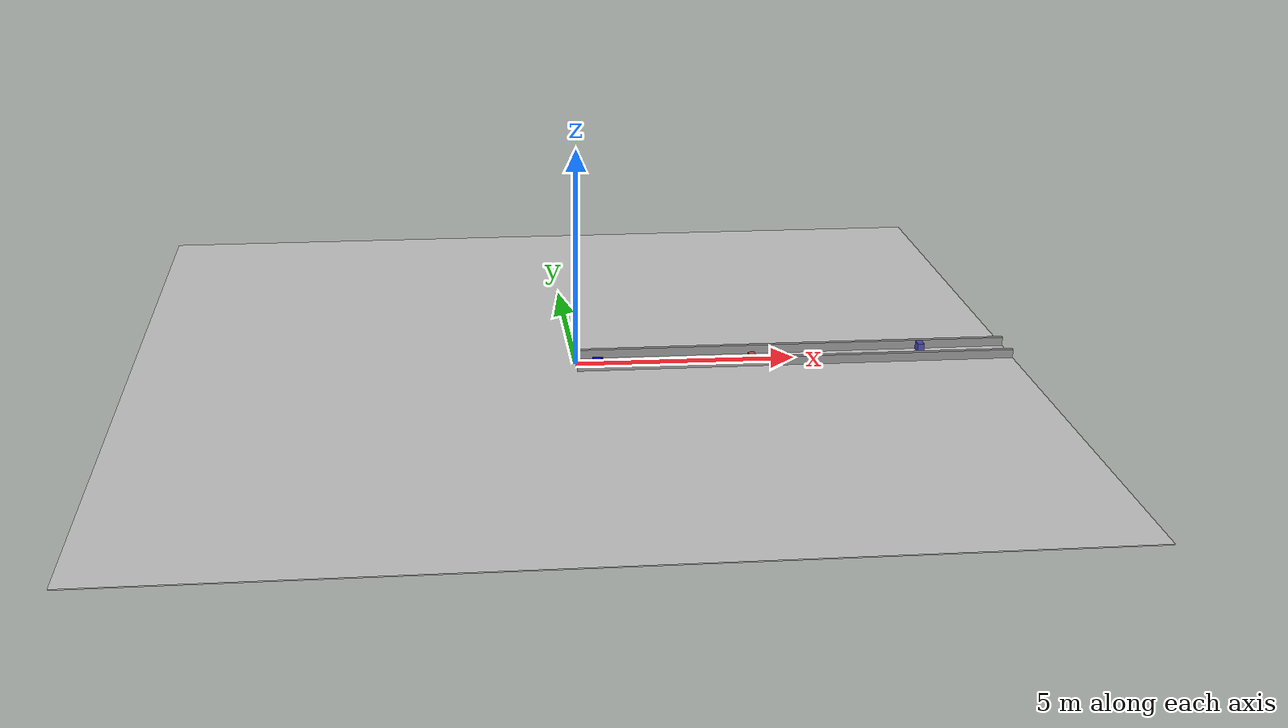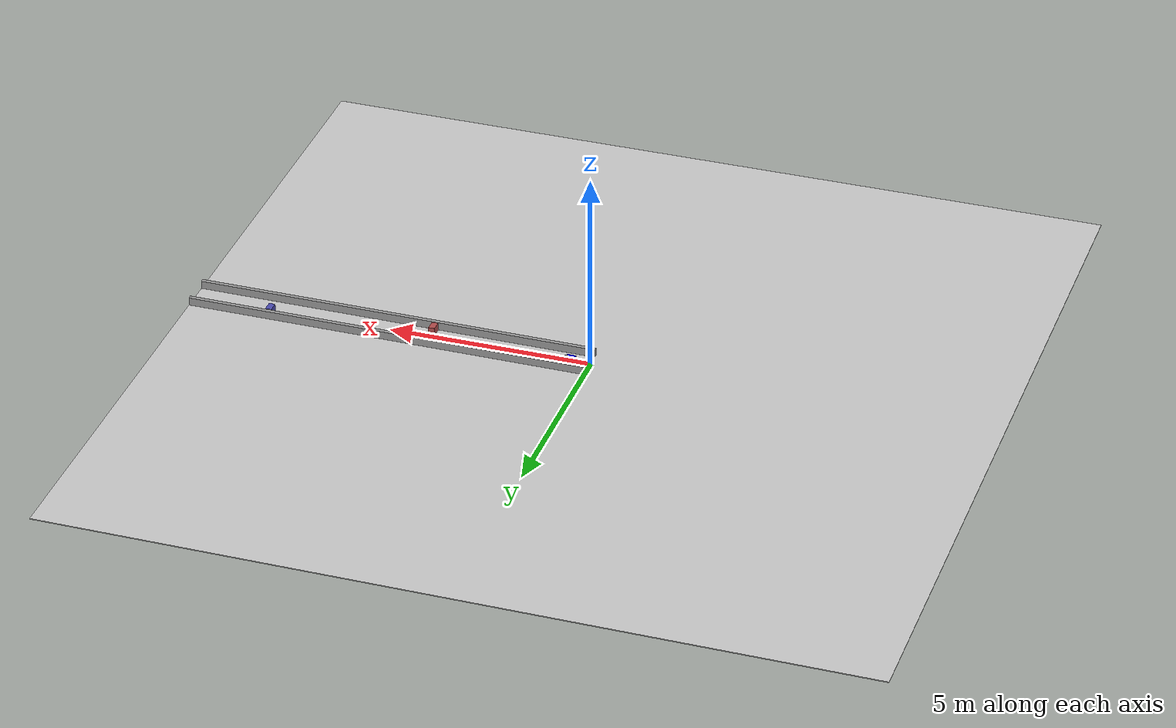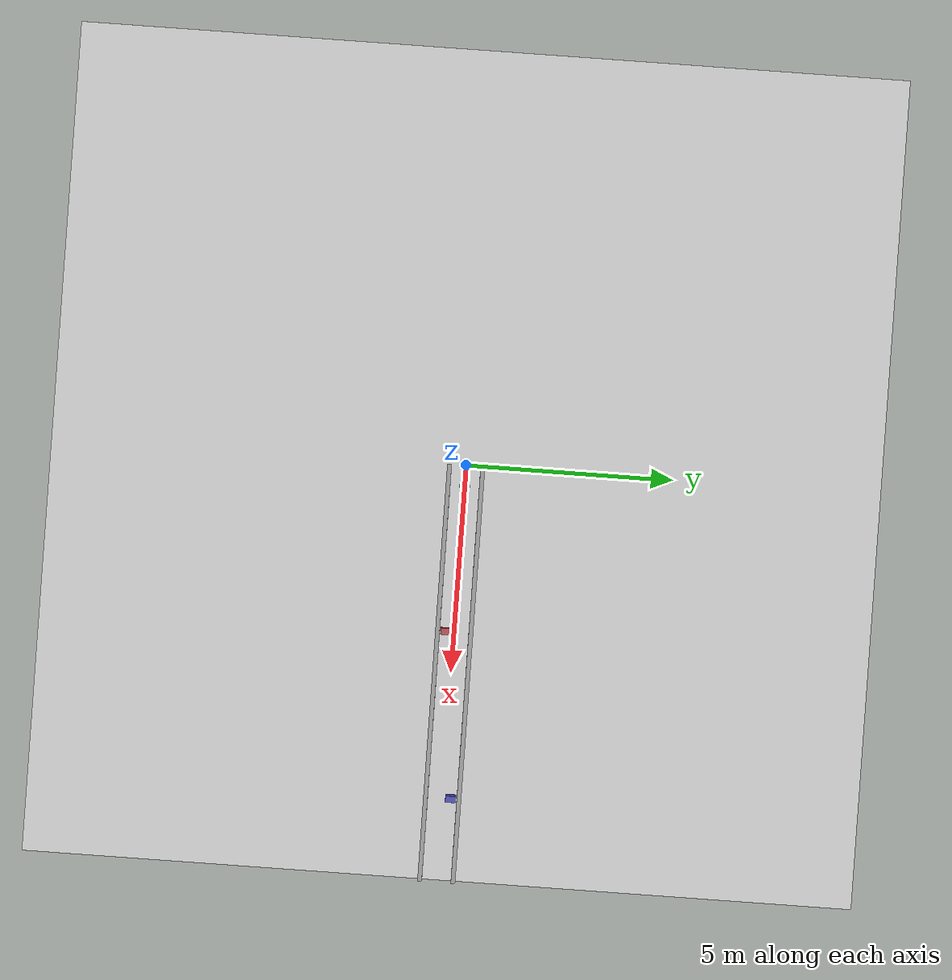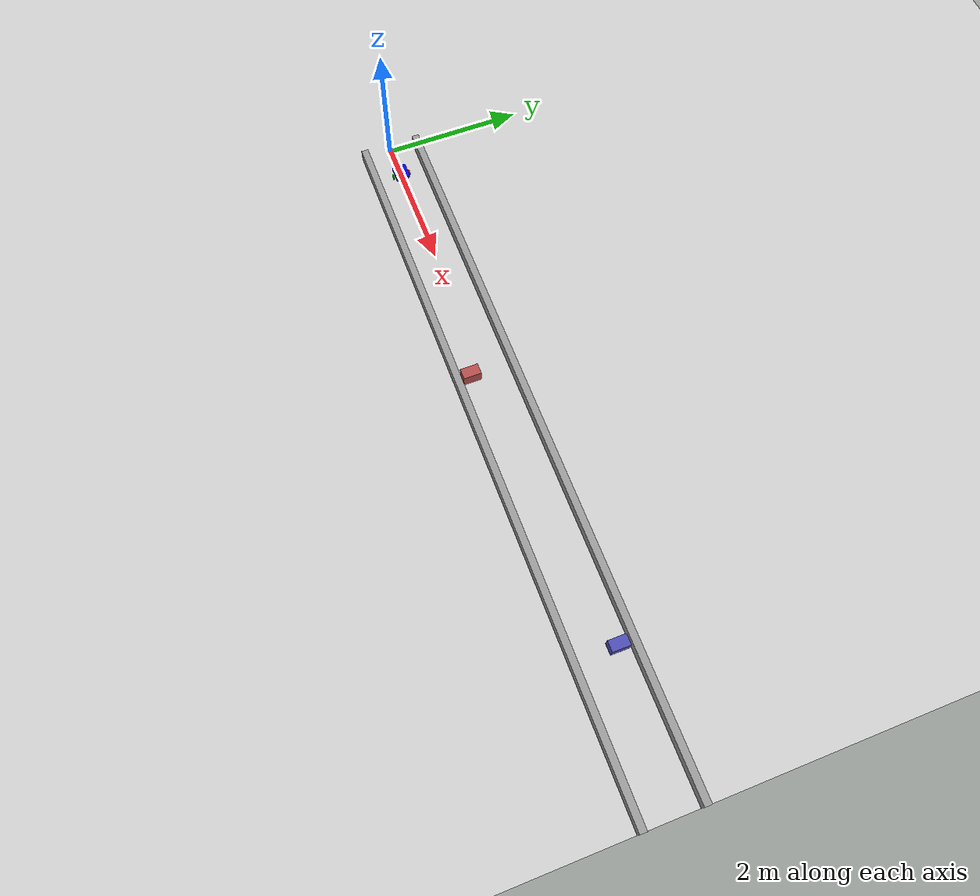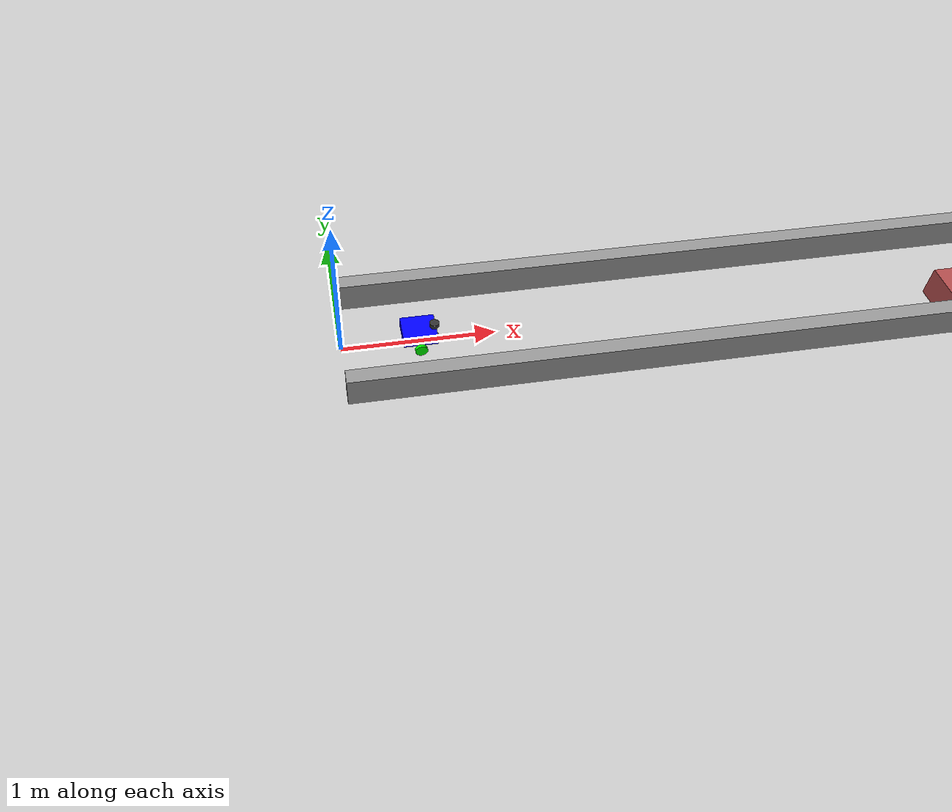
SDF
<?xml version="1.0" ?>
<sdf version="1.7">
  <world name="corridor_world_02">

    <!-- Physics & Systems -->
    <plugin filename="gz-sim-physics-system"
            name="gz::sim::systems::Physics"/>

    <plugin filename="gz-sim-scene-broadcaster-system"
            name="gz::sim::systems::SceneBroadcaster"/>

    <plugin filename="gz-sim-sensors-system"
            name="gz::sim::systems::Sensors">
      <render_engine>ogre2</render_engine>
    </plugin>

    <gravity>0 0 -9.81</gravity>

    <!-- Scene (background + ambient) -->
    <scene>
      <background>0.75 0.75 0.75 1</background>
      <ambient>0.6 0.6 0.6 1</ambient>
      <shadows>true</shadows>
    </scene>

    <!-- Sun Light -->
    <light name="sun" type="directional">
      <pose>0 0 20 0 0 0</pose>
      <direction>-0.3 -0.3 -1</direction>
      <diffuse>1 1 1 1</diffuse>
      <specular>0.2 0.2 0.2 1</specular>
      <attenuation>
        <range>100</range>
        <constant>0.9</constant>
        <linear>0.01</linear>
        <quadratic>0.001</quadratic>
      </attenuation>
    </light>

    <!-- Ground Plane -->
    <model name="ground_plane">
      <static>true</static>
      <pose>0 0 -0.01 0 0 0</pose>
      <link name="link">
        <collision name="collision">
          <geometry>
            <box>
              <size>20 20 0.02</size>
            </box>
          </geometry>
        </collision>

        <visual name="visual">
          <geometry>
            <box>
              <size>20 20 0.02</size>
            </box>
          </geometry>
          <material>
            <ambient>0.8 0.8 0.8 1</ambient>
            <diffuse>0.8 0.8 0.8 1</diffuse>
            <specular>0.1 0.1 0.1 1</specular>
          </material>
        </visual>
      </link>
    </model>

    <!-- Corridor Curbs (±0.4 m) -->
    <model name="left_curb">
      <static>true</static>
      <pose>5 0.4 0.1 0 0 0</pose>
      <link name="link">
        <collision name="collision">
          <geometry>
            <box>
              <size>10 0.10 0.2</size>
            </box>
          </geometry>
        </collision>
        <visual name="visual">
          <geometry>
            <box>
              <size>10 0.10 0.2</size>
            </box>
          </geometry>
          <material>
            <ambient>0.6 0.6 0.6 1</ambient>
            <diffuse>0.6 0.6 0.6 1</diffuse>
          </material>
        </visual>
      </link>
    </model>

    <model name="right_curb">
      <static>true</static>
      <pose>5 -0.4 0.1 0 0 0</pose>
      <link name="link">
        <collision name="collision">
          <geometry>
            <box>
              <size>10 0.10 0.2</size>
            </box>
          </geometry>
        </collision>
        <visual name="visual">
          <geometry>
            <box>
              <size>10 0.10 0.2</size>
            </box>
          </geometry>
          <material>
            <ambient>0.6 0.6 0.6 1</ambient>
            <diffuse>0.6 0.6 0.6 1</diffuse>
          </material>
        </visual>
      </link>
    </model>

    <!-- Obstacles (ON GROUND) -->

    <!-- Obstacle at 4 m → RIGHT -->
    <!-- Height = 0.20 → Z = 0.10 -->
    <model name="obstacle_4m_right">
      <static>true</static>
      <pose>4 -0.2 0.10 0 0 0</pose>
      <link name="link">
        <collision name="collision">
          <geometry>
            <box>
              <size>0.15 0.25 0.20</size>
            </box>
          </geometry>
        </collision>
        <visual name="visual">
          <geometry>
            <box>
              <size>0.15 0.25 0.20</size>
            </box>
          </geometry>
          <material>
            <ambient>0.5 0.2 0.2 1</ambient>
            <diffuse>0.7 0.3 0.3 1</diffuse>
          </material>
        </visual>
      </link>
    </model>

    <!-- Obstacle at 8 m → LEFT -->
    <!-- Height = 0.20 → Z = 0.10 -->
    <model name="obstacle_8m_left">
      <static>true</static>
      <pose>8 0.2 0.10 0 0 0</pose>
      <link name="link">
        <collision name="collision">
          <geometry>
            <box>
              <size>0.15 0.25 0.20</size>
            </box>
          </geometry>
        </collision>
        <visual name="visual">
          <geometry>
            <box>
              <size>0.15 0.25 0.20</size>
            </box>
          </geometry>
          <material>
            <ambient>0.2 0.2 0.5 1</ambient>
            <diffuse>0.3 0.3 0.7 1</diffuse>
          </material>
        </visual>
      </link>
    </model>

    <!-- Robot -->
    <include>
      <uri>model://simple_robot</uri>
      <name>robot</name>
      <pose>0.5 0 0 0 0 0</pose>
    </include>

  </world>
</sdf>

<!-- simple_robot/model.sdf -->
<sdf version="1.9">
  <model name="simple_robot">
    <pose>0 0 0 0 0 0</pose>
    <static>false</static>

    <!-- ================== CHASSIS ================== -->
    <link name="chassis">
      <!-- Chassis center at z = 0.09, bottom at 0.06 -->
      <pose>0 0 0.09 0 0 0</pose>

      <inertial>
        <mass>3.0</mass>
        <inertia>
          <ixx>0.0125</ixx>
          <iyy>0.025</iyy>
          <izz>0.0325</izz>
        </inertia>
      </inertial>

      <!-- Chassis box: height 0.06 -->
      <collision name="chassis_collision">
        <geometry>
          <box>
            <size>0.22 0.2 0.06</size>
          </box>
        </geometry>
      </collision>

      <visual name="chassis_visual">
        <geometry>
          <box>
            <size>0.22 0.2 0.06</size>
          </box>
        </geometry>
        <material>
          <diffuse>0 0 1 1</diffuse>
        </material>
      </visual>

      <!-- ========= FRONT CASTER (low friction) ========= -->
      <!-- caster center = 0.09 - 0.06 = 0.03; radius 0.03 -> bottom at 0 -->
      <collision name="front_caster_collision">
        <pose>0.10 0 -0.06 0 0 0</pose>
        <geometry>
          <sphere>
            <radius>0.03</radius>
          </sphere>
        </geometry>
        <surface>
          <friction>
            <ode>
              <mu>0.01</mu>
              <mu2>0.01</mu2>
            </ode>
          </friction>
        </surface>
      </collision>

      <visual name="front_caster_visual">
        <pose>0.10 0 -0.06 0 0 0</pose>
        <geometry>
          <sphere>
            <radius>0.03</radius>
          </sphere>
        </geometry>
        <material>
          <diffuse>0 0 0 1</diffuse>
        </material>
      </visual>

      <!-- ========= REAR CASTER (low friction) ========= -->
      <collision name="rear_caster_collision">
        <pose>-0.07 0 -0.06 0 0 0</pose>
        <geometry>
          <sphere>
            <radius>0.03</radius>
          </sphere>
        </geometry>
        <surface>
          <friction>
            <ode>
              <mu>0.01</mu>
              <mu2>0.01</mu2>
            </ode>
          </friction>
        </surface>
      </collision>

      <visual name="rear_caster_visual">
        <pose>-0.07 0 -0.06 0 0 0</pose>
        <geometry>
          <sphere>
            <radius>0.03</radius>
          </sphere>
        </geometry>
        <material>
          <diffuse>0 0 0 1</diffuse>
        </material>
      </visual>

    </link>

    <!-- ================== LEFT WHEEL ================== -->
    <link name="left_wheel">
      <!-- Wheel center at z = 0.04, radius 0.04 -> bottom at 0 -->
      <pose>0 0.12 0.04 0 0 0</pose>

      <inertial>
        <mass>0.2</mass>
        <inertia>
          <ixx>0.0005</ixx>
          <iyy>0.0005</iyy>
          <izz>0.0005</izz>
        </inertia>
      </inertial>

      <collision name="collision">
        <!-- Cylinder axis rotated so local Z becomes Y -->
        <pose>0 0 0 1.5708 0 0</pose>
        <geometry>
          <cylinder>
            <radius>0.04</radius>
            <length>0.02</length>
          </cylinder>
        </geometry>
        <surface>
          <friction>
            <ode>
              <mu>1.0</mu>
              <mu2>1.0</mu2>
            </ode>
          </friction>
        </surface>
      </collision>

      <visual name="visual">
        <pose>0 0 0 1.5708 0 0</pose>
        <geometry>
          <cylinder>
            <radius>0.04</radius>
            <length>0.02</length>
          </cylinder>
        </geometry>
        <material>
          <diffuse>1 0 0 1</diffuse>
        </material>
      </visual>
    </link>

    <joint name="left_wheel_joint" type="revolute">
      <parent>chassis</parent>
      <child>left_wheel</child>
      <axis>
        <xyz>0 1 0</xyz>
        <dynamics>
          <damping>0.1</damping>
        </dynamics>
        <limit>
          <lower>-1e16</lower>
          <upper>1e16</upper>
        </limit>
      </axis>
    </joint>

    <!-- ================== RIGHT WHEEL ================== -->
    <link name="right_wheel">
      <pose>0 -0.12 0.04 0 0 0</pose>

      <inertial>
        <mass>0.2</mass>
        <inertia>
          <ixx>0.0005</ixx>
          <iyy>0.0005</iyy>
          <izz>0.0005</izz>
        </inertia>
      </inertial>

      <collision name="collision">
        <pose>0 0 0 1.5708 0 0</pose>
        <geometry>
          <cylinder>
            <radius>0.04</radius>
            <length>0.02</length>
          </cylinder>
        </geometry>
        <surface>
          <friction>
            <ode>
              <mu>1.0</mu>
              <mu2>1.0</mu2>
            </ode>
          </friction>
        </surface>
      </collision>

      <visual name="visual">
        <pose>0 0 0 1.5708 0 0</pose>
        <geometry>
          <cylinder>
            <radius>0.04</radius>
            <length>0.02</length>
          </cylinder>
        </geometry>
        <material>
          <diffuse>0 1 0 1</diffuse>
        </material>
      </visual>
    </link>

    <joint name="right_wheel_joint" type="revolute">
      <parent>chassis</parent>
      <child>right_wheel</child>
      <axis>
        <xyz>0 1 0</xyz>
        <dynamics>
          <damping>0.1</damping>
        </dynamics>
        <limit>
          <lower>-1e16</lower>
          <upper>1e16</upper>
        </limit>
      </axis>
    </joint>

    <!-- ================== LIDAR ================== -->
    <link name="lidar_link">
      <!-- Chassis top = 0.12; lidar half-length = 0.015 -> center 0.135 -->
      <pose>0.1 0 0.135 0 0 0</pose>

      <inertial>
        <mass>0.1</mass>
        <inertia>
          <ixx>1e-4</ixx>
          <iyy>1e-4</iyy>
          <izz>1e-4</izz>
          <ixy>0.0</ixy>
          <ixz>0.0</ixz>
          <iyz>0.0</iyz>
        </inertia>
      </inertial>

      <visual name="lidar_body_visual">
        <geometry>
          <cylinder>
            <radius>0.03</radius>
            <length>0.03</length>
          </cylinder>
        </geometry>
        <material>
          <diffuse>0.2 0.2 0.2 1</diffuse>
        </material>
      </visual>

      <sensor name="lidar" type="gpu_lidar">
        <always_on>true</always_on>
        <visualize>true</visualize>
        <update_rate>10</update_rate>
        <topic>scan</topic>
        <frame_id>lidar_link</frame_id>
        <lidar>
          <scan>
            <horizontal>
              <samples>360</samples>
              <resolution>1</resolution>
              <min_angle>-1.57</min_angle>
              <max_angle>1.57</max_angle>
            </horizontal>
          </scan>
          <range>
            <min>0.05</min>
            <max>10.0</max>
          </range>
        </lidar>
      </sensor>
    </link>

    <joint name="lidar_joint" type="fixed">
      <parent>chassis</parent>
      <child>lidar_link</child>
    </joint>

    <!-- ================== DIFF DRIVE PLUGIN ================== -->
    <plugin filename="gz-sim-diff-drive-system"
        name="gz::sim::systems::DiffDrive">

  <left_joint>left_wheel_joint</left_joint>
  <right_joint>right_wheel_joint</right_joint>

  <wheel_separation>0.24</wheel_separation>
  <wheel_radius>0.05</wheel_radius>

  <!-- cmd_vel command topic (Gazebo side) -->
  <topic>cmd_vel</topic>

  <!-- Odometry configuration -->
  <odom_topic>odom</odom_topic>                 <!-- Gazebo odom topic name -->
  <odom_frame_id>odom</odom_frame_id>           <!-- world / fixed frame -->
  <robot_base_frame_id>chassis</robot_base_frame_id> <!-- our base link name -->
  <enable_odom_tf>true</enable_odom_tf>         <!-- publish TF inside Gazebo -->
</plugin>

  </model>
</sdf>
